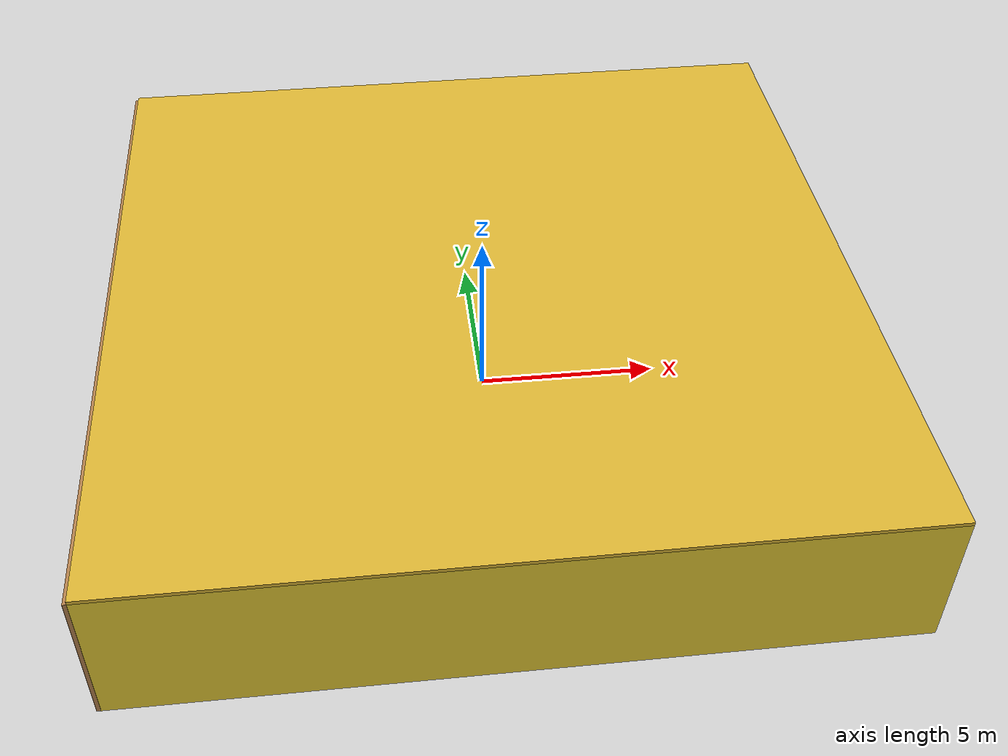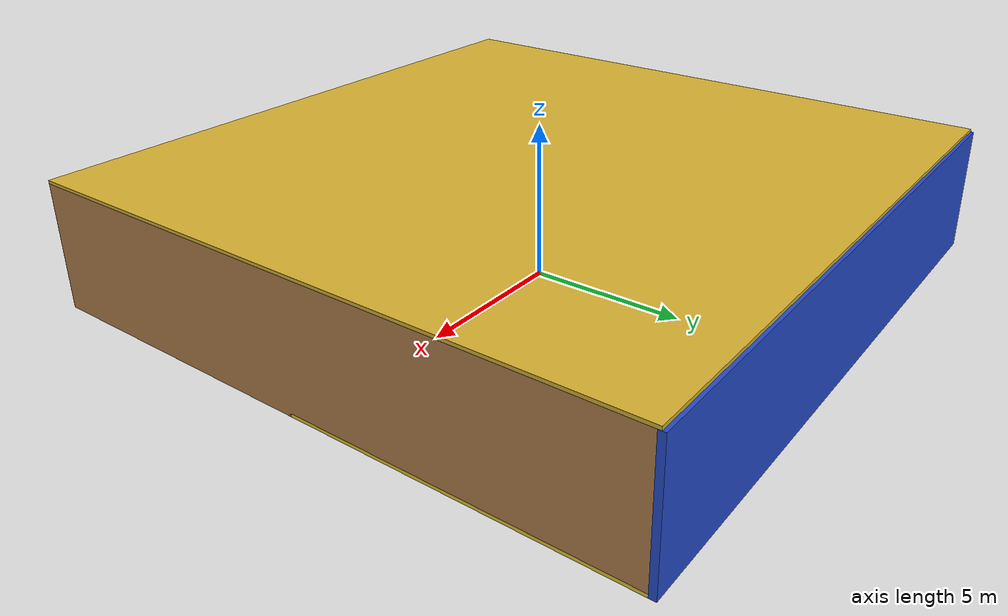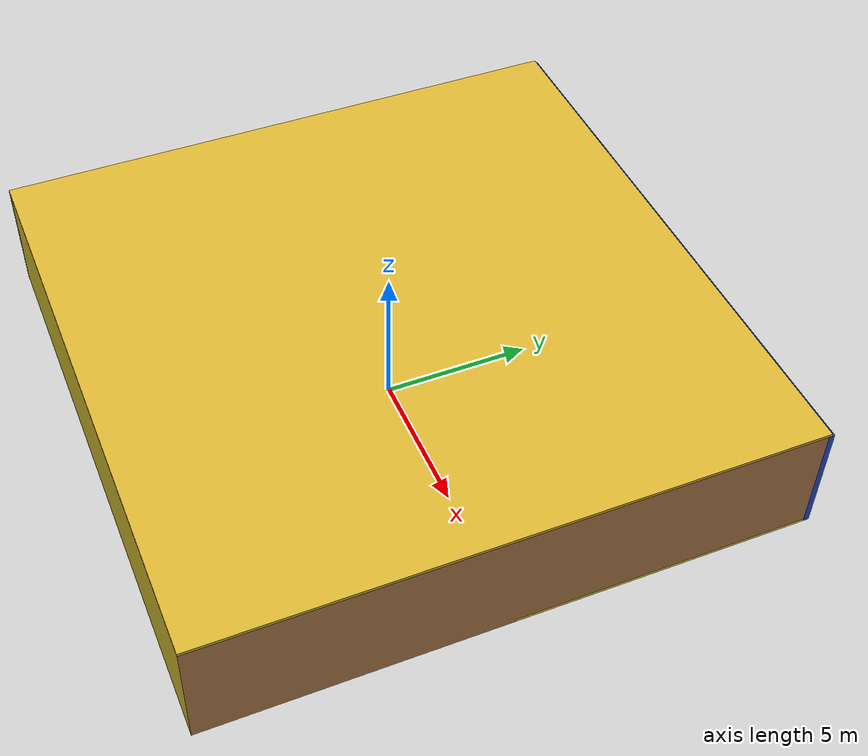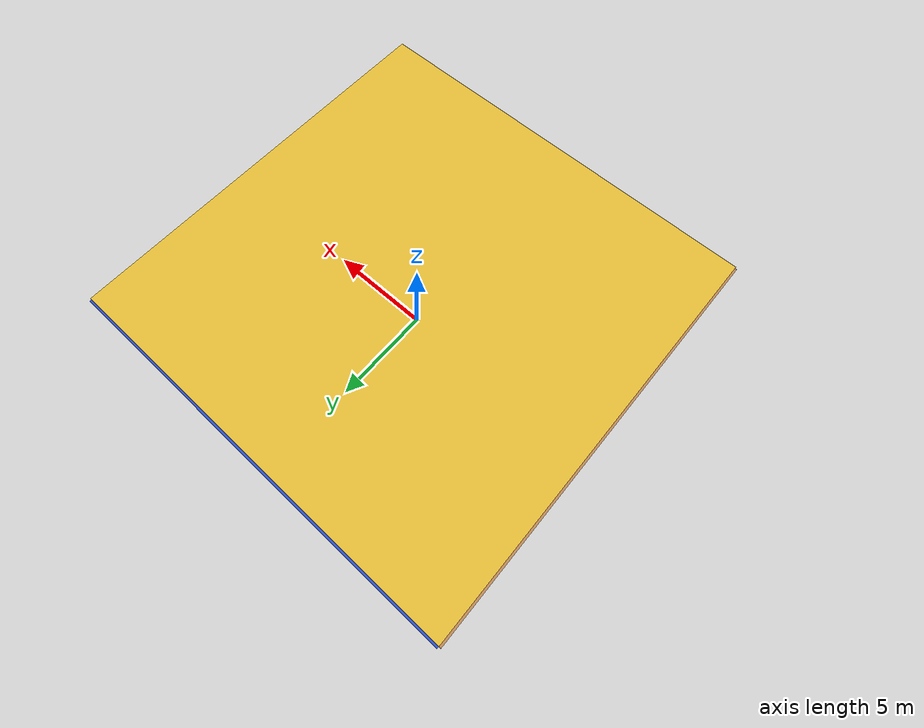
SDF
<sdf version="1.4">
 <world name="default">
  <physics type="ode">
   <max_step_size>0.001</max_step_size>
   <real_time_factor>1</real_time_factor>
   <real_time_update_rate>1000</real_time_update_rate>
   <gravity>0 0 -9.8</gravity>
  </physics>
  <scene><ambient>0.4 0.4 0.4 1</ambient><background>0.7 0.7 0.7 1</background><shadows>1</shadows></scene>
  <model name="Surrounding">
   <static>1</static>
   <link name="Ceiling">
    <collision name="Ceiling_Collision"><geometry><box><size>20 20 0.1</size></box></geometry></collision>
    <visual name="Ceiling_Visual">
     <geometry><box><size>20 20 0.1</size></box></geometry>
     <material>
      <script><uri>file://media/materials/scripts/gazebo.material</uri><name>Gazebo/Gold</name></script>
     </material>
    </visual>
    <pose>0 0 4.05 0 0 0</pose>
   </link>
   <link name="Wall_South">
    <collision name="Wall_South_Collision">
     <geometry><box><size>20 0 4</size></box></geometry>
     <pose>0 0 2 0 -0 0</pose>
    </collision>
    <visual name="Wall_South_Visual">
     <pose>0 0 2 0 -0 0</pose>
     <geometry><box><size>20 0 4</size></box></geometry>
     <material>
      <script><uri>file://media/materials/scripts/gazebo.material</uri><name>Gazebo/ZincYellow</name></script>
     </material>
    </visual>
    <velocity_decay><linear>0</linear><angular>0</angular></velocity_decay>
    <pose>0 -10 0 0 -0 0</pose>
   </link>
   <link name="Wall_East">
    <collision name="Wall_21_Collision">
     <geometry><box><size>20 0 4</size></box></geometry>
     <pose>0 0 2 0 -0 0</pose>
    </collision>
    <visual name="Wall_21_Visual">
     <pose>0 0 2 0 -0 0</pose>
     <geometry><box><size>20 0 4</size></box></geometry>
     <material>
      <script><uri>file://media/materials/scripts/gazebo.material</uri><name>Gazebo/Wood</name></script>
     </material>
    </visual>
    <velocity_decay><linear>0</linear><angular>0</angular></velocity_decay>
    <pose>10 0 0 0 -0 1.5708</pose>
   </link>
   <link name="Wall_North">
    <collision name="Wall_22_Collision">
     <geometry><box><size>20 0.2 4</size></box></geometry>
     <pose>0 0 2 0 -0 0</pose>
    </collision>
    <visual name="Wall_22_Visual">
     <pose>0 0 2 0 -0 0</pose>
     <geometry><box><size>20 0.2 4</size></box></geometry>
     <material>
      <script><uri>file://media/materials/scripts/gazebo.material</uri><name>Gazebo/BlueGlow</name></script>
     </material>
    </visual>
    <velocity_decay><linear>0</linear><angular>0</angular></velocity_decay>
    <pose>0 10 0 0 -0 0</pose>
   </link>
   <link name="Wall_West">
    <collision name="Wall_23_Collision">
     <geometry><box><size>20 0.2 4</size></box></geometry>
     <pose>0 0 2 0 -0 0</pose>
    </collision>
    <visual name="Wall_23_Visual">
     <pose>0 0 2 0 -0 0</pose>
     <geometry><box><size>20 0.2 4</size></box></geometry>
     <material>
      <script><uri>file://media/materials/scripts/gazebo.material</uri><name>Gazebo/WoodPallet</name></script>
     </material>
    </visual>
    <velocity_decay><linear>0</linear><angular>0</angular></velocity_decay>
    <pose>-10 0 0 0 0 -1.5708</pose>
   </link>
   <link name="Ground_link">
    <collision name="collision">
     <pose>0 0 .05 0 -0 0</pose>
     <geometry><box><size>20 20 0.1</size></box></geometry>
    </collision>
    <visual name="visual">
     <pose>0 0 .05 0 -0 0</pose>
     <geometry><box><size>20 20 0.1</size></box></geometry>
     <material>
      <script><uri>file://media/materials/scripts/gazebo.material</uri><name>Gazebo/ZincYellow</name></script>
     </material>
    </visual>
   </link>
   <static>1</static>
  </model>
  <spherical_coordinates>
   <surface_model>EARTH_WGS84</surface_model>
   <latitude_deg>0</latitude_deg>
   <longitude_deg>0</longitude_deg>
   <elevation>0</elevation>
   <heading_deg>0</heading_deg>
  </spherical_coordinates>
  <light name="lightball_0" type="diffuse">
   <diffuse>0.8 0.8 0.8 1</diffuse>
   <specular>0.2 0.2 0.2 1</specular>
   <attenuation>
    <range>100</range>
    <constant>0.7</constant>
    <linear>0.01</linear>
    <quadratic>0.001</quadratic>
   </attenuation>
   <direction>-0.5 0.1 -0.9</direction>
   <pose>3.68866199201 -4.1887272323 3.26114176542 0 0 0</pose>
  </light>
  <light name="lightball_1" type="diffuse">
   <diffuse>0.8 0.8 0.8 1</diffuse>
   <specular>0.2 0.2 0.2 1</specular>
   <attenuation>
    <range>100</range>
    <constant>0.7</constant>
    <linear>0.01</linear>
    <quadratic>0.001</quadratic>
   </attenuation>
   <direction>-0.5 0.1 -0.9</direction>
   <pose>-4.66627608562 -1.95461385104 2.7077004359 0 0 0</pose>
  </light>
  <light name="lightball_2" type="diffuse">
   <diffuse>0.8 0.8 0.8 1</diffuse>
   <specular>0.2 0.2 0.2 1</specular>
   <attenuation>
    <range>100</range>
    <constant>0.7</constant>
    <linear>0.01</linear>
    <quadratic>0.001</quadratic>
   </attenuation>
   <direction>-0.5 0.1 -0.9</direction>
   <pose>-6.87674345077 -7.053586936 3.71049980692 0 0 0</pose>
  </light>
  <light name="lightball_3" type="diffuse">
   <diffuse>0.8 0.8 0.8 1</diffuse>
   <specular>0.2 0.2 0.2 1</specular>
   <attenuation>
    <range>100</range>
    <constant>0.7</constant>
    <linear>0.01</linear>
    <quadratic>0.001</quadratic>
   </attenuation>
   <direction>-0.5 0.1 -0.9</direction>
   <pose>-6.85908627448 0.286429249957 3.65055081326 0 0 0</pose>
  </light>
  <light name="lightball_4" type="diffuse">
   <diffuse>0.8 0.8 0.8 1</diffuse>
   <specular>0.2 0.2 0.2 1</specular>
   <attenuation>
    <range>100</range>
    <constant>0.7</constant>
    <linear>0.01</linear>
    <quadratic>0.001</quadratic>
   </attenuation>
   <direction>-0.5 0.1 -0.9</direction>
   <pose>-4.31167539801 3.8383750526 3.72386958396 0 0 0</pose>
  </light>
  <light name="lightball_5" type="diffuse">
   <diffuse>0.8 0.8 0.8 1</diffuse>
   <specular>0.2 0.2 0.2 1</specular>
   <attenuation>
    <range>100</range>
    <constant>0.7</constant>
    <linear>0.01</linear>
    <quadratic>0.001</quadratic>
   </attenuation>
   <direction>-0.5 0.1 -0.9</direction>
   <pose>8.91161467656 -0.872511513856 3.89782156677 0 0 0</pose>
  </light>
  <light name="lightball_6" type="diffuse">
   <diffuse>0.8 0.8 0.8 1</diffuse>
   <specular>0.2 0.2 0.2 1</specular>
   <attenuation>
    <range>100</range>
    <constant>0.7</constant>
    <linear>0.01</linear>
    <quadratic>0.001</quadratic>
   </attenuation>
   <direction>-0.5 0.1 -0.9</direction>
   <pose>9.88067895184 6.9101133636 3.49780228098 0 0 0</pose>
  </light>
  <light name="lightball_7" type="diffuse">
   <diffuse>0.8 0.8 0.8 1</diffuse>
   <specular>0.2 0.2 0.2 1</specular>
   <attenuation>
    <range>100</range>
    <constant>0.7</constant>
    <linear>0.01</linear>
    <quadratic>0.001</quadratic>
   </attenuation>
   <direction>-0.5 0.1 -0.9</direction>
   <pose>-5.37385070658 -1.23015071434 2.19925843263 0 0 0</pose>
  </light>
  <light name="lightball_8" type="diffuse">
   <diffuse>0.8 0.8 0.8 1</diffuse>
   <specular>0.2 0.2 0.2 1</specular>
   <attenuation>
    <range>100</range>
    <constant>0.7</constant>
    <linear>0.01</linear>
    <quadratic>0.001</quadratic>
   </attenuation>
   <direction>-0.5 0.1 -0.9</direction>
   <pose>-7.45854443164 4.50210910375 2.98982052497 0 0 0</pose>
  </light>
  <light name="lightball_9" type="diffuse">
   <diffuse>0.8 0.8 0.8 1</diffuse>
   <specular>0.2 0.2 0.2 1</specular>
   <attenuation>
    <range>100</range>
    <constant>0.7</constant>
    <linear>0.01</linear>
    <quadratic>0.001</quadratic>
   </attenuation>
   <direction>-0.5 0.1 -0.9</direction>
   <pose>4.90080494233 -8.25407856067 1.96249620572 0 0 0</pose>
  </light>
  <light name="lightball_10" type="diffuse">
   <diffuse>0.8 0.8 0.8 1</diffuse>
   <specular>0.2 0.2 0.2 1</specular>
   <attenuation>
    <range>100</range>
    <constant>0.7</constant>
    <linear>0.01</linear>
    <quadratic>0.001</quadratic>
   </attenuation>
   <direction>-0.5 0.1 -0.9</direction>
   <pose>4.7798605694 4.87696788998 0.926372744265 0 0 0</pose>
  </light>
  <light name="lightball_11" type="diffuse">
   <diffuse>0.8 0.8 0.8 1</diffuse>
   <specular>0.2 0.2 0.2 1</specular>
   <attenuation>
    <range>100</range>
    <constant>0.7</constant>
    <linear>0.01</linear>
    <quadratic>0.001</quadratic>
   </attenuation>
   <direction>-0.5 0.1 -0.9</direction>
   <pose>-3.54754792593 1.91245202475 2.00712722109 0 0 0</pose>
  </light>
  <light name="lightball_12" type="diffuse">
   <diffuse>0.8 0.8 0.8 1</diffuse>
   <specular>0.2 0.2 0.2 1</specular>
   <attenuation>
    <range>100</range>
    <constant>0.7</constant>
    <linear>0.01</linear>
    <quadratic>0.001</quadratic>
   </attenuation>
   <direction>-0.5 0.1 -0.9</direction>
   <pose>0.498314267418 -8.93546354884 1.99687708965 0 0 0</pose>
  </light>
  <include><uri>model://cabinet</uri><pose>-7.06355908064 -1.84053624879 0 0 0 1.49710855205</pose></include>
  <include>
   <uri>model://construction_cone</uri>
   <pose>-4.50841290926 -0.743192987592 0 0 0 0.106619075905</pose>
  </include>
  <include><uri>model://cabinet</uri><pose>-1.51434394666 -7.65203609526 0 0 0 2.52101389982</pose></include>
  <include><uri>model://cabinet</uri><pose>-1.05338957638 5.0185450673 0 0 0 0.680243881783</pose></include>
  <include><uri>model://cabinet</uri><pose>0.954535689276 4.34436305865 0 0 0 3.02507972433</pose></include>
  <include>
   <uri>model://construction_cone</uri>
   <pose>7.86107446101 -4.30029732447 0 0 0 2.5955383452</pose>
  </include>
  <include>
   <uri>model://robocup_3Dsim_goal</uri>
   <pose>6.75351814852 6.96404323869 0 0 0 2.90408074779</pose>
  </include>
 </world>
</sdf>

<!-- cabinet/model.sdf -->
<sdf version="1.5">
  <model name="cabinet">
    <static>true</static>
    <link name="cabinet_bottom_plate">
      <inertial>
        <pose>0 0 -1 0 0 0</pose>
        <inertia>
          <ixx>2.050000</ixx>
          <ixy>0</ixy>
          <ixz>0</ixz>
          <iyy>2.050000</iyy>
          <iyz>0</iyz>
          <izz>2.050000</izz>
        </inertia>
        <mass>25.000000</mass>
      </inertial>
      <collision name="cabinet_bottom_plate_geom">
        <pose>0 0 0.010000 0 0 0</pose>
        <geometry>
          <box>
            <size>0.450000 0.450000 0.020000</size>
          </box>
        </geometry>
      </collision>
      <visual name="cabinet_bottom_plate_geom_visual">
        <pose>0 0 0.010000 0 0 0</pose>
        <geometry>
          <box>
            <size>0.450000 0.450000 0.020000</size>
          </box>
        </geometry>
        <material>
          <script>
            <uri>model://media/materials/scripts/gazebo.material</uri>
            <name>Gazebo/Wood</name>
          </script>
        </material>
      </visual>
      <collision name="cabinet_bottom_plate_geom_cabinet_back_plate">
        <pose>0.235000 0 0.510000 0 0 0</pose>
        <geometry>
          <box>
            <size>0.020000 0.450000 1.020000</size>
          </box>
        </geometry>
      </collision>
      <visual name="cabinet_bottom_plate_geom_cabinet_back_plate_visual">
        <pose>0.235000 0 0.510000 0 0 0</pose>
        <geometry>
          <box>
            <size>0.020000 0.450000 1.020000</size>
          </box>
        </geometry>
        <material>
          <script>
            <uri>model://media/materials/scripts/gazebo.material</uri>
            <name>Gazebo/Wood</name>
          </script>
        </material>
      </visual>
      <collision name="cabinet_bottom_plate_geom_cabinet_left_plate">
        <pose>0 0.235000 0.510000 0 0 0</pose>
        <geometry>
          <box>
            <size>0.450000 0.020000 1.020000</size>
          </box>
        </geometry>
      </collision>
      <visual name="cabinet_bottom_plate_geom_cabinet_left_plate_visual">
        <pose>0 0.235000 0.510000 0 0 0</pose>
        <geometry>
          <box>
            <size>0.450000 0.020000 1.020000</size>
          </box>
        </geometry>
        <material>
          <script>
            <uri>model://media/materials/scripts/gazebo.material</uri>
            <name>Gazebo/Wood</name>
          </script>
        </material>
      </visual>
      <collision name="cabinet_bottom_plate_geom_cabinet_middle_plate">
        <pose>0 0 0.510000 0 0 0</pose>
        <geometry>
          <box>
            <size>0.450000 0.450000 0.020000</size>
          </box>
        </geometry>
      </collision>
      <visual name="cabinet_bottom_plate_geom_cabinet_middle_plate_visual">
        <pose>0 0 0.510000 0 0 0</pose>
        <geometry>
          <box>
            <size>0.450000 0.450000 0.020000</size>
          </box>
        </geometry>
        <material>
          <script>
            <uri>model://media/materials/scripts/gazebo.material</uri>
            <name>Gazebo/Wood</name>
          </script>
        </material>
      </visual>
      <collision name="cabinet_bottom_plate_geom_cabinet_right_plate">
        <pose>0 -0.235000 0.510000 0 0 0</pose>
        <geometry>
          <box>
            <size>0.450000 0.020000 1.020000</size>
          </box>
        </geometry>
      </collision>
      <visual name="cabinet_bottom_plate_geom_cabinet_right_plate_visual">
        <pose>0 -0.235000 0.510000 0 0 0</pose>
        <geometry>
          <box>
            <size>0.450000 0.020000 1.020000</size>
          </box>
        </geometry>
        <material>
          <script>
            <uri>model://media/materials/scripts/gazebo.material</uri>
            <name>Gazebo/Wood</name>
          </script>
        </material>
      </visual>
      <collision name="cabinet_bottom_plate_geom_cabinet_top_plate">
        <pose>0 0 1.010000 0 0 0</pose>
        <geometry>
          <box>
            <size>0.450000 0.450000 0.020000</size>
          </box>
        </geometry>
      </collision>
      <visual name="cabinet_bottom_plate_geom_cabinet_top_plate_visual">
        <pose>0 0 1.010000 0 0 0</pose>
        <geometry>
          <box>
            <size>0.450000 0.450000 0.020000</size>
          </box>
        </geometry>
        <material>
          <script>
            <uri>model://media/materials/scripts/gazebo.material</uri>
            <name>Gazebo/Wood</name>
          </script>
        </material>
      </visual>
    </link>
  </model>
</sdf>

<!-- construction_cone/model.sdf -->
<sdf version="1.5">
  <model name="Construction Cone">
    <link name="link">
      <collision name="collision">
        <geometry>
          <mesh>
            <scale>10 10 10</scale>
            <uri>file://isr-testbed/construction_cone/meshes/construction_cone.dae</uri>
          </mesh>
        </geometry>
      </collision>
      <visual name="visual">
        <geometry>
          <mesh>
            <scale>10 10 10</scale>
            <uri>file://isr-testbed/construction_cone/meshes/construction_cone.dae</uri>
          </mesh>
        </geometry>
      </visual>
    </link>
  </model>
</sdf>

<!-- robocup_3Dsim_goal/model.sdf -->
<sdf version="1.5">
  <model name="robocup_3d_goal">
    <static>true</static>
    <link name="left_post">
      <pose>0 1.05 0.45 0 0 0</pose>
      <collision name="collision">
        <geometry>
          <cylinder>
            <radius>0.05</radius>
            <length>0.9</length>
          </cylinder>
        </geometry>
      </collision>
      <visual name="visual">
        <geometry>
          <cylinder>
            <radius>0.05</radius>
            <length>0.9</length>
          </cylinder>
        </geometry>
        <material>
          <script>
            <uri>file://media/materials/scripts/gazebo.material</uri>
            <name>Gazebo/ZincYellow</name>
          </script>
        </material>
      </visual>
    </link>
    <link name="left_support_horiz_lower">
      <pose>0.30 1.05 0.01 0 0 0</pose>
      <collision name="collision">
        <geometry>
          <box>
            <size>0.50 0.02 0.02</size>
          </box>
        </geometry>
      </collision>
      <visual name="visual">
        <geometry>
          <box>
            <size>0.50 0.02 0.02</size>
          </box>
        </geometry>
        <material>
          <script>
            <uri>file://media/materials/scripts/gazebo.material</uri>
            <name>Gazebo/White</name>
          </script>
        </material>
      </visual>
    </link>
    <link name="left_support_horiz_upper">
      <pose>0.30 1.05 0.79 0 0 0</pose>
      <collision name="collision">
        <geometry>
          <box>
            <size>0.50 0.02 0.02</size>
          </box>
        </geometry>
      </collision>
      <visual name="visual">
        <geometry>
          <box>
            <size>0.50 0.02 0.02</size>
          </box>
        </geometry>
        <material>
          <script>
            <uri>file://media/materials/scripts/gazebo.material</uri>
            <name>Gazebo/White</name>
          </script>
        </material>
      </visual>
    </link>
    <link name="left_support_vertical">
      <pose>0.56 1.05 0.4 0 1.5708 0</pose>
      <collision name="collision">
        <geometry>
          <box>
            <size>0.80 0.02 0.02</size>
          </box>
        </geometry>
      </collision>
      <visual name="visual">
        <geometry>
          <box>
            <size>0.80 0.02 0.02</size>
          </box>
        </geometry>
        <material>
          <script>
            <uri>file://media/materials/scripts/gazebo.material</uri>
            <name>Gazebo/White</name>
          </script>
        </material>
      </visual>
    </link>
    <link name="right_support_horiz_lower">
      <pose>0.30 -1.05 0.01 0 0 0</pose>
      <collision name="collision">
        <geometry>
          <box>
            <size>0.50 0.02 0.02</size>
          </box>
        </geometry>
      </collision>
      <visual name="visual">
        <geometry>
          <box>
            <size>0.50 0.02 0.02</size>
          </box>
        </geometry>
        <material>
          <script>
            <uri>file://media/materials/scripts/gazebo.material</uri>
            <name>Gazebo/White</name>
          </script>
        </material>
      </visual>
    </link>
    <link name="right_support_horiz_upper">
      <pose>0.30 -1.05 0.79 0 0 0</pose>
      <collision name="collision">
        <geometry>
          <box>
            <size>0.50 0.02 0.02</size>
          </box>
        </geometry>
      </collision>
      <visual name="visual">
        <geometry>
          <box>
            <size>0.50 0.02 0.02</size>
          </box>
        </geometry>
        <material>
          <script>
            <uri>file://media/materials/scripts/gazebo.material</uri>
            <name>Gazebo/White</name>
          </script>
        </material>
      </visual>
    </link>
    <link name="right_support_vertical">
      <pose>0.56 -1.05 0.4 0 1.5708 0</pose>
      <collision name="collision">
        <geometry>
          <box>
            <size>0.80 0.02 0.02</size>
          </box>
        </geometry>
      </collision>
      <visual name="visual">
        <geometry>
          <box>
            <size>0.80 0.02 0.02</size>
          </box>
        </geometry>
        <material>
          <script>
            <uri>file://media/materials/scripts/gazebo.material</uri>
            <name>Gazebo/White</name>
          </script>
        </material>
      </visual>
    </link>
    <link name="center_support_horiz_lower">
      <pose>0.56 0 0.01 0 1.5708 0</pose>
      <collision name="collision">
        <geometry>
          <box>
            <size>0.02 2.08 0.02</size>
          </box>
        </geometry>
      </collision>
      <visual name="visual">
        <geometry>
          <box>
            <size>0.02 2.08 0.02</size>
          </box>
        </geometry>
        <material>
          <script>
            <uri>file://media/materials/scripts/gazebo.material</uri>
            <name>Gazebo/White</name>
          </script>
        </material>
      </visual>
    </link>
    <link name="center_support_horiz_upper">
      <pose>0.56 0 0.79 0 1.5708 0</pose>
      <collision name="collision">
        <geometry>
          <box>
            <size>0.02 2.08 0.02</size>
          </box>
        </geometry>
      </collision>
      <visual name="visual">
        <geometry>
          <box>
            <size>0.02 2.08 0.02</size>
          </box>
        </geometry>
        <material>
          <script>
            <uri>file://media/materials/scripts/gazebo.material</uri>
            <name>Gazebo/White</name>
          </script>
        </material>
      </visual>
    </link>
    <link name="right_post">
      <pose>0 -1.05 0.45 0 0 0</pose>
      <collision name="collision">
        <geometry>
          <cylinder>
            <radius>0.05</radius>
            <length>0.9</length>
          </cylinder>
        </geometry>
      </collision>
      <visual name="visual">
        <geometry>
          <cylinder>
            <radius>0.05</radius>
            <length>0.9</length>
          </cylinder>
        </geometry>
        <material>
          <script>
            <uri>file://media/materials/scripts/gazebo.material</uri>
            <name>Gazebo/ZincYellow</name>
          </script>
        </material>
      </visual>
    </link>
    <link name="crossbar">
      <pose>0 0 0.85 1.57 1.57 0</pose>
      <collision name="collision">
        <geometry>
          <cylinder>
            <radius>0.05</radius>
            <length>2.0</length>
          </cylinder>
        </geometry>
      </collision>
      <visual name="visual">
        <geometry>
          <cylinder>
            <radius>0.05</radius>
            <length>2.0</length>
          </cylinder>
        </geometry>
        <material>
          <script>
            <uri>file://media/materials/scripts/gazebo.material</uri>
            <name>Gazebo/ZincYellow</name>
          </script>
        </material>
      </visual>
    </link>
    <link name="center_net">
      <pose>0.56 0 0.40 0 0 0</pose>
      <collision name="collision">
        <geometry>
          <box>
            <size>0.01 2.1 0.80</size>
          </box>
        </geometry>
      </collision>
      <visual name="visual">
        <geometry>
          <box>
            <size>0.01 2.1 0.80</size>
          </box>
        </geometry>
        <material>
          <script>
            <uri>model://../model_source/models/robocup09_spl_field/materials/scripts/</uri>
            <uri>model://../model_source/models/robocup09_spl_field/materials/textures/</uri>
            <name>RoboCup/Net</name>
          </script>
        </material>
      </visual>
    </link>
    <link name="left_net">
      <pose>0.30 1.05 0.40 0 0 0</pose>
      <collision name="collision">
        <geometry>
          <box>
            <size>0.50 0.01 0.76</size>
          </box>
        </geometry>
      </collision>
      <visual name="visual">
        <geometry>
          <box>
            <size>0.50 0.01 0.76</size>
          </box>
        </geometry>
        <material>
          <script>
            <uri>model://../model_source/models/robocup09_spl_field/materials/scripts/</uri>
            <uri>model://../model_source/models/robocup09_spl_field/materials/textures/</uri>
            <name>RoboCup/Net</name>
          </script>
        </material>
      </visual>
    </link>
    <link name="right_net">
      <pose>0.30 -1.05 0.40 0 0 0</pose>
      <collision name="collision">
        <geometry>
          <box>
            <size>0.50 0.01 0.76</size>
          </box>
        </geometry>
      </collision>
      <visual name="visual">
        <geometry>
          <box>
            <size>0.50 0.01 0.76</size>
          </box>
        </geometry>
        <material>
          <script>
            <uri>model://../model_source/models/robocup09_spl_field/materials/scripts/</uri>
            <uri>model://../model_source/models/robocup09_spl_field/materials/textures/</uri>
            <name>RoboCup/Net</name>
          </script>
        </material>
      </visual>
    </link>
  </model>
</sdf>
